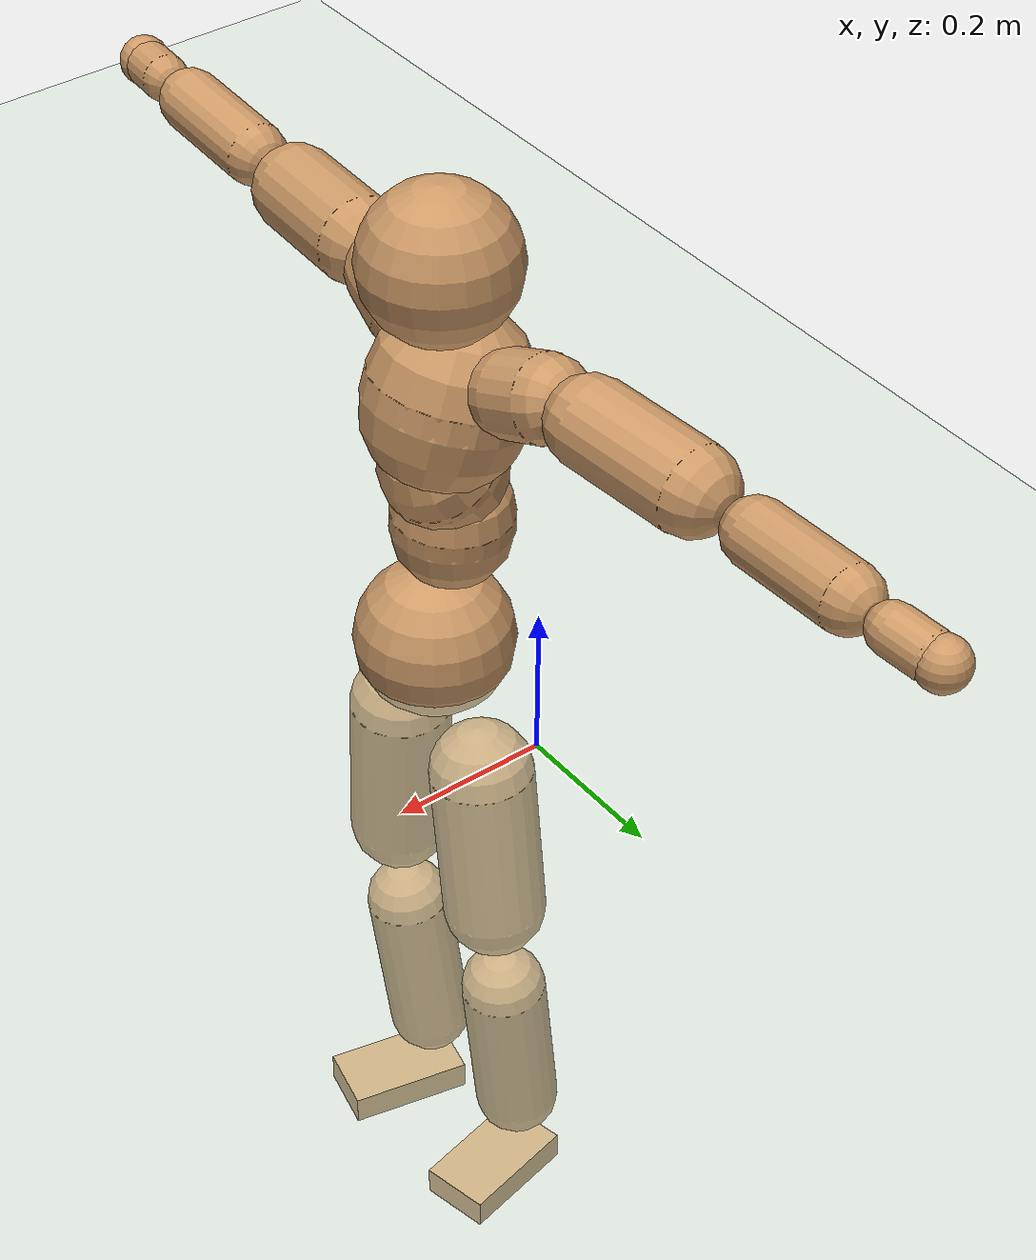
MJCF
<mujoco model="humanoid">
  <compiler coordinate="local"/>
  <default>
    <joint damping="0.0" armature="0.01" stiffness="0.0" limited="true"/>
    <geom conaffinity="1" condim="3" contype="7" margin="0.001" rgba="0.8 0.6 .4 1"/>
  </default>
  <asset>
    <texture type="skybox" builtin="gradient" rgb1=".4 .5 .6" rgb2="0 0 0" width="100" height="100"/>
    <texture builtin="flat" height="1278" mark="cross" markrgb="1 1 1" name="texgeom" random="0.01" rgb1="0.8 0.6 0.4" rgb2="0.8 0.6 0.4" type="cube" width="127"/>
    <texture builtin="checker" height="100" name="texplane" rgb1="0 0 0" rgb2="0.8 0.8 0.8" type="2d" width="100"/>
    <material name="MatPlane" reflectance="0.5" shininess="1" specular="1" texrepeat="60 60" texture="texplane"/>
    <material name="geom" texture="texgeom" texuniform="true"/>
  </asset>
  <worldbody>
    <light cutoff="100" diffuse="1 1 1" dir="-0 0 -1.3" directional="true" exponent="1" pos="0 0 1.3" specular=".1 .1 .1"/>
    <geom conaffinity="1" condim="3" name="floor" pos="0 0 0" rgba="0.8 0.9 0.8 1" size="100 100 .2" type="plane" material="MatPlane"/>
    <body name="Pelvis" pos="0.0009 -0.2072 0.0357">
      <freejoint name="Pelvis"/>
      <geom type="sphere" contype="1" conaffinity="1" density="500" size="0.1024" pos="0.0000 0.0000 0.0000" name="Pelvis"/>
      <body name="L_Hip" pos="-0.0049 0.0798 -0.0934">
        <joint name="L_Hip_x" type="hinge" pos="0 0 0" axis="1 0 0" stiffness="800" damping="80" armature="0.02" range="-180.0000 180.0000"/>
        <joint name="L_Hip_y" type="hinge" pos="0 0 0" axis="0 1 0" stiffness="800" damping="80" armature="0.02" range="-180.0000 180.0000"/>
        <joint name="L_Hip_z" type="hinge" pos="0 0 0" axis="0 0 1" stiffness="800" damping="80" armature="0.02" range="-180.0000 180.0000"/>
        <geom type="capsule" contype="1" conaffinity="1" density="500" fromto="-0.0026 0.0057 -0.0755 -0.0104 0.0229 -0.3022" size="0.0674" name="L_Hip"/>
        <body name="L_Knee" pos="-0.013 0.0286 -0.3777">
          <joint name="L_Knee_x" type="hinge" pos="0 0 0" axis="1 0 0" stiffness="800" damping="80" armature="0.02" range="-180.0000 180.0000"/>
          <joint name="L_Knee_y" type="hinge" pos="0 0 0" axis="0 1 0" stiffness="800" damping="80" armature="0.02" range="-180.0000 180.0000"/>
          <joint name="L_Knee_z" type="hinge" pos="0 0 0" axis="0 0 1" stiffness="800" damping="80" armature="0.02" range="-180.0000 180.0000"/>
          <geom type="capsule" contype="1" conaffinity="1" density="500" fromto="-0.0097 -0.0022 -0.0797 -0.0388 -0.0087 -0.3186" size="0.0562" name="L_Knee"/>
          <body name="L_Ankle" pos="-0.0485 -0.0109 -0.3983">
            <joint name="L_Ankle_x" type="hinge" pos="0 0 0" axis="1 0 0" stiffness="800" damping="80" armature="0.02" range="-180.0000 180.0000"/>
            <joint name="L_Ankle_y" type="hinge" pos="0 0 0" axis="0 1 0" stiffness="800" damping="80" armature="0.02" range="-180.0000 180.0000"/>
            <joint name="L_Ankle_z" type="hinge" pos="0 0 0" axis="0 0 1" stiffness="800" damping="80" armature="0.02" range="-180.0000 180.0000"/>
            <geom type="box" contype="1" conaffinity="1" density="500" pos="0.0575 0.0126 -0.0280" size="0.0827 0.0471 0.0209" quat="0.9942 0.0000 0.0000 0.1077" name="L_Ankle"/>
            <body name="L_Toe" pos="0.115 0.0252 -0.0561">
              <joint name="L_Toe_x" type="hinge" pos="0 0 0" axis="1 0 0" stiffness="500" damping="50" armature="0.02" range="-180.0000 180.0000"/>
              <joint name="L_Toe_y" type="hinge" pos="0 0 0" axis="0 1 0" stiffness="500" damping="50" armature="0.02" range="-180.0000 180.0000"/>
              <joint name="L_Toe_z" type="hinge" pos="0 0 0" axis="0 0 1" stiffness="500" damping="50" armature="0.02" range="-180.0000 180.0000"/>
              <geom type="box" contype="1" conaffinity="1" density="500" pos="0.0000 0.0000 0.0279" size="0.001 0.0024 0.001" quat="0.9935 0.0000 0.0000 0.1140" name="L_Toe"/>
            </body>
          </body>
        </body>
      </body>
      <body name="R_Hip" pos="-0.0016 -0.0776 -0.0934">
        <joint name="R_Hip_x" type="hinge" pos="0 0 0" axis="1 0 0" stiffness="800" damping="80" armature="0.02" range="-180.0000 180.0000"/>
        <joint name="R_Hip_y" type="hinge" pos="0 0 0" axis="0 1 0" stiffness="800" damping="80" armature="0.02" range="-180.0000 180.0000"/>
        <joint name="R_Hip_z" type="hinge" pos="0 0 0" axis="0 0 1" stiffness="800" damping="80" armature="0.02" range="-180.0000 180.0000"/>
        <geom type="capsule" contype="1" conaffinity="1" density="500" fromto="-0.0030 -0.0071 -0.0767 -0.0121 -0.0284 -0.3070" size="0.0666" name="R_Hip"/>
        <body name="R_Knee" pos="-0.0151 -0.0355 -0.3837">
          <joint name="R_Knee_x" type="hinge" pos="0 0 0" axis="1 0 0" stiffness="800" damping="80" armature="0.02" range="-180.0000 180.0000"/>
          <joint name="R_Knee_y" type="hinge" pos="0 0 0" axis="0 1 0" stiffness="800" damping="80" armature="0.02" range="-180.0000 180.0000"/>
          <joint name="R_Knee_z" type="hinge" pos="0 0 0" axis="0 0 1" stiffness="800" damping="80" armature="0.02" range="-180.0000 180.0000"/>
          <geom type="capsule" contype="1" conaffinity="1" density="500" fromto="-0.0093 0.0028 -0.0799 -0.0371 0.0111 -0.3196" size="0.0562" name="R_Knee"/>
          <body name="R_Ankle" pos="-0.0464 0.0138 -0.3995">
            <joint name="R_Ankle_x" type="hinge" pos="0 0 0" axis="1 0 0" stiffness="800" damping="80" armature="0.02" range="-180.0000 180.0000"/>
            <joint name="R_Ankle_y" type="hinge" pos="0 0 0" axis="0 1 0" stiffness="800" damping="80" armature="0.02" range="-180.0000 180.0000"/>
            <joint name="R_Ankle_z" type="hinge" pos="0 0 0" axis="0 0 1" stiffness="800" damping="80" armature="0.02" range="-180.0000 180.0000"/>
            <geom type="box" contype="1" conaffinity="1" density="500" pos="0.0595 -0.0129 -0.0246" size="0.0837 0.0466 0.0211" quat="0.9943 0.0000 0.0000 -0.1069" name="R_Ankle"/>
            <body name="R_Toe" pos="0.119 -0.0259 -0.0492">
              <joint name="R_Toe_x" type="hinge" pos="0 0 0" axis="1 0 0" stiffness="500" damping="50" armature="0.02" range="-180.0000 180.0000"/>
              <joint name="R_Toe_y" type="hinge" pos="0 0 0" axis="0 1 0" stiffness="500" damping="50" armature="0.02" range="-180.0000 180.0000"/>
              <joint name="R_Toe_z" type="hinge" pos="0 0 0" axis="0 0 1" stiffness="500" damping="50" armature="0.02" range="-180.0000 180.0000"/>
              <geom type="box" contype="1" conaffinity="1" density="500" pos="0.0000 0.0000 0.0256" size="0.0009 0.0023 0.0011" quat="0.9953 0.0000 0.0000 -0.0973" name="R_Toe"/>
            </body>
          </body>
        </body>
      </body>
      <body name="Torso" pos="-0.0277 -0.0021 0.107">
        <joint name="Torso_x" type="hinge" pos="0 0 0" axis="1 0 0" stiffness="1000" damping="100" armature="0.02" range="-180.0000 180.0000"/>
        <joint name="Torso_y" type="hinge" pos="0 0 0" axis="0 1 0" stiffness="1000" damping="100" armature="0.02" range="-180.0000 180.0000"/>
        <joint name="Torso_z" type="hinge" pos="0 0 0" axis="0 0 1" stiffness="1000" damping="100" armature="0.02" range="-180.0000 180.0000"/>
        <geom type="capsule" contype="1" conaffinity="1" density="500" fromto="-0.0018 0.0014 0.0724 -0.0012 0.0009 0.0483" size="0.0773" name="Torso"/>
        <body name="Spine" pos="-0.003 0.0023 0.1206">
          <joint name="Spine_x" type="hinge" pos="0 0 0" axis="1 0 0" stiffness="1000" damping="100" armature="0.02" range="-180.0000 180.0000"/>
          <joint name="Spine_y" type="hinge" pos="0 0 0" axis="0 1 0" stiffness="1000" damping="100" armature="0.02" range="-180.0000 180.0000"/>
          <joint name="Spine_z" type="hinge" pos="0 0 0" axis="0 0 1" stiffness="1000" damping="100" armature="0.02" range="-180.0000 180.0000"/>
          <geom type="capsule" contype="1" conaffinity="1" density="500" fromto="0.0189 0.0013 0.0288 0.0126 0.0008 0.0192" size="0.0779" name="Spine"/>
          <body name="Chest" pos="0.0315 0.0021 0.048">
            <joint name="Chest_x" type="hinge" pos="0 0 0" axis="1 0 0" stiffness="1000" damping="100" armature="0.02" range="-180.0000 180.0000"/>
            <joint name="Chest_y" type="hinge" pos="0 0 0" axis="0 1 0" stiffness="1000" damping="100" armature="0.02" range="-180.0000 180.0000"/>
            <joint name="Chest_z" type="hinge" pos="0 0 0" axis="0 0 1" stiffness="1000" damping="100" armature="0.02" range="-180.0000 180.0000"/>
            <geom type="capsule" contype="1" conaffinity="1" density="500" fromto="-0.0278 -0.0000 0.0908 -0.0185 -0.0000 0.0606" size="0.1035" name="Chest"/>
            <body name="Neck" pos="-0.058 0.0008 0.2107">
              <joint name="Neck_x" type="hinge" pos="0 0 0" axis="1 0 0" stiffness="500" damping="50" armature="0.02" range="-180.0000 180.0000"/>
              <joint name="Neck_y" type="hinge" pos="0 0 0" axis="0 1 0" stiffness="500" damping="50" armature="0.02" range="-180.0000 180.0000"/>
              <joint name="Neck_z" type="hinge" pos="0 0 0" axis="0 0 1" stiffness="500" damping="50" armature="0.02" range="-180.0000 180.0000"/>
              <geom type="capsule" contype="1" conaffinity="1" density="500" fromto="0.0093 0.0005 0.0109 0.0372 0.0019 0.0436" size="0.0421" name="Neck"/>
              <body name="Head" pos="0.0465 0.0023 0.0545">
                <joint name="Head_x" type="hinge" pos="0 0 0" axis="1 0 0" stiffness="500" damping="50" armature="0.02" range="-180.0000 180.0000"/>
                <joint name="Head_y" type="hinge" pos="0 0 0" axis="0 1 0" stiffness="500" damping="50" armature="0.02" range="-180.0000 180.0000"/>
                <joint name="Head_z" type="hinge" pos="0 0 0" axis="0 0 1" stiffness="500" damping="50" armature="0.02" range="-180.0000 180.0000"/>
                <geom type="sphere" contype="1" conaffinity="1" density="500" size="0.0989" pos="0.0000 0.0000 0.0000" name="Head"/>
              </body>
            </body>
            <body name="L_Thorax" pos="-0.0373 0.0848 0.1232">
              <joint name="L_Thorax_x" type="hinge" pos="0 0 0" axis="1 0 0" stiffness="500" damping="50" armature="0.02" range="-180.0000 180.0000"/>
              <joint name="L_Thorax_y" type="hinge" pos="0 0 0" axis="0 1 0" stiffness="500" damping="50" armature="0.02" range="-180.0000 180.0000"/>
              <joint name="L_Thorax_z" type="hinge" pos="0 0 0" axis="0 0 1" stiffness="500" damping="50" armature="0.02" range="-180.0000 180.0000"/>
              <geom type="capsule" contype="1" conaffinity="1" density="500" fromto="-0.0021 0.0182 0.0071 -0.0085 0.0727 0.0283" size="0.0539" name="L_Thorax"/>
              <body name="L_Shoulder" pos="-0.0106 0.0909 0.0353">
                <joint name="L_Shoulder_x" type="hinge" pos="0 0 0" axis="1 0 0" stiffness="500" damping="50" armature="0.02" range="-720.0000 720.0000"/>
                <joint name="L_Shoulder_y" type="hinge" pos="0 0 0" axis="0 1 0" stiffness="500" damping="50" armature="0.02" range="-720.0000 720.0000"/>
                <joint name="L_Shoulder_z" type="hinge" pos="0 0 0" axis="0 0 1" stiffness="500" damping="50" armature="0.02" range="-720.0000 720.0000"/>
                <geom type="capsule" contype="1" conaffinity="1" density="500" fromto="-0.0059 0.0514 -0.0022 -0.0234 0.2056 -0.0089" size="0.0556" name="L_Shoulder"/>
                <body name="L_Elbow" pos="-0.0293 0.2569 -0.0111">
                  <joint name="L_Elbow_x" type="hinge" pos="0 0 0" axis="1 0 0" stiffness="500" damping="50" armature="0.02" range="-720.0000 720.0000"/>
                  <joint name="L_Elbow_y" type="hinge" pos="0 0 0" axis="0 1 0" stiffness="500" damping="50" armature="0.02" range="-720.0000 720.0000"/>
                  <joint name="L_Elbow_z" type="hinge" pos="0 0 0" axis="0 0 1" stiffness="500" damping="50" armature="0.02" range="-720.0000 720.0000"/>
                  <geom type="capsule" contype="1" conaffinity="1" density="500" fromto="0.0002 0.0482 0.0021 0.0009 0.1928 0.0085" size="0.0412" name="L_Elbow"/>
                  <body name="L_Wrist" pos="0.0011 0.241 0.0106">
                    <joint name="L_Wrist_x" type="hinge" pos="0 0 0" axis="1 0 0" stiffness="300" damping="30" armature="0.02" range="-180.0000 180.0000"/>
                    <joint name="L_Wrist_y" type="hinge" pos="0 0 0" axis="0 1 0" stiffness="300" damping="30" armature="0.02" range="-180.0000 180.0000"/>
                    <joint name="L_Wrist_z" type="hinge" pos="0 0 0" axis="0 0 1" stiffness="300" damping="30" armature="0.02" range="-180.0000 180.0000"/>
                    <geom type="capsule" contype="1" conaffinity="1" density="500" fromto="-0.0026 0.0159 -0.0019 -0.0105 0.0637 -0.0077" size="0.0305" name="L_Wrist"/>
                    <body name="L_Hand" pos="-0.0131 0.0797 -0.0096">
                      <joint name="L_Hand_x" type="hinge" pos="0 0 0" axis="1 0 0" stiffness="300" damping="30" armature="0.02" range="-180.0000 180.0000"/>
                      <joint name="L_Hand_y" type="hinge" pos="0 0 0" axis="0 1 0" stiffness="300" damping="30" armature="0.02" range="-180.0000 180.0000"/>
                      <joint name="L_Hand_z" type="hinge" pos="0 0 0" axis="0 0 1" stiffness="300" damping="30" armature="0.02" range="-180.0000 180.0000"/>
                      <geom type="sphere" contype="1" conaffinity="1" density="500" size="0.0322" pos="0.0000 0.0000 0.0000" name="L_Hand"/>
                    </body>
                  </body>
                </body>
              </body>
            </body>
            <body name="R_Thorax" pos="-0.0435 -0.0858 0.1203">
              <joint name="R_Thorax_x" type="hinge" pos="0 0 0" axis="1 0 0" stiffness="500" damping="50" armature="0.02" range="-180.0000 180.0000"/>
              <joint name="R_Thorax_y" type="hinge" pos="0 0 0" axis="0 1 0" stiffness="500" damping="50" armature="0.02" range="-180.0000 180.0000"/>
              <joint name="R_Thorax_z" type="hinge" pos="0 0 0" axis="0 0 1" stiffness="500" damping="50" armature="0.02" range="-180.0000 180.0000"/>
              <geom type="capsule" contype="1" conaffinity="1" density="500" fromto="-0.0027 -0.0193 0.0075 -0.0109 -0.0770 0.0299" size="0.0532" name="R_Thorax"/>
              <body name="R_Shoulder" pos="-0.0136 -0.0963 0.0373">
                <joint name="R_Shoulder_x" type="hinge" pos="0 0 0" axis="1 0 0" stiffness="500" damping="50" armature="0.02" range="-720.0000 720.0000"/>
                <joint name="R_Shoulder_y" type="hinge" pos="0 0 0" axis="0 1 0" stiffness="500" damping="50" armature="0.02" range="-720.0000 720.0000"/>
                <joint name="R_Shoulder_z" type="hinge" pos="0 0 0" axis="0 0 1" stiffness="500" damping="50" armature="0.02" range="-720.0000 720.0000"/>
                <geom type="capsule" contype="1" conaffinity="1" density="500" fromto="-0.0045 -0.0511 -0.0030 -0.0180 -0.2045 -0.0120" size="0.0573" name="R_Shoulder"/>
                <body name="R_Elbow" pos="-0.0225 -0.2556 -0.015">
                  <joint name="R_Elbow_x" type="hinge" pos="0 0 0" axis="1 0 0" stiffness="500" damping="50" armature="0.02" range="-720.0000 720.0000"/>
                  <joint name="R_Elbow_y" type="hinge" pos="0 0 0" axis="0 1 0" stiffness="500" damping="50" armature="0.02" range="-720.0000 720.0000"/>
                  <joint name="R_Elbow_z" type="hinge" pos="0 0 0" axis="0 0 1" stiffness="500" damping="50" armature="0.02" range="-720.0000 720.0000"/>
                  <geom type="capsule" contype="1" conaffinity="1" density="500" fromto="-0.0003 -0.0503 0.0023 -0.0014 -0.2013 0.0091" size="0.0417" name="R_Elbow"/>
                  <body name="R_Wrist" pos="-0.0017 -0.2516 0.0113">
                    <joint name="R_Wrist_x" type="hinge" pos="0 0 0" axis="1 0 0" stiffness="300" damping="30" armature="0.02" range="-180.0000 180.0000"/>
                    <joint name="R_Wrist_y" type="hinge" pos="0 0 0" axis="0 1 0" stiffness="300" damping="30" armature="0.02" range="-180.0000 180.0000"/>
                    <joint name="R_Wrist_z" type="hinge" pos="0 0 0" axis="0 0 1" stiffness="300" damping="30" armature="0.02" range="-180.0000 180.0000"/>
                    <geom type="capsule" contype="1" conaffinity="1" density="500" fromto="-0.0022 -0.0164 -0.0015 -0.0086 -0.0654 -0.0059" size="0.0316" name="R_Wrist"/>
                    <body name="R_Hand" pos="-0.0108 -0.0818 -0.0074">
                      <joint name="R_Hand_x" type="hinge" pos="0 0 0" axis="1 0 0" stiffness="300" damping="30" armature="0.02" range="-180.0000 180.0000"/>
                      <joint name="R_Hand_y" type="hinge" pos="0 0 0" axis="0 1 0" stiffness="300" damping="30" armature="0.02" range="-180.0000 180.0000"/>
                      <joint name="R_Hand_z" type="hinge" pos="0 0 0" axis="0 0 1" stiffness="300" damping="30" armature="0.02" range="-180.0000 180.0000"/>
                      <geom type="sphere" contype="1" conaffinity="1" density="500" size="0.0330" pos="0.0000 0.0000 0.0000" name="R_Hand"/>
                    </body>
                  </body>
                </body>
              </body>
            </body>
          </body>
        </body>
      </body>
    </body>
  </worldbody>
  <actuator>
    <motor name="L_Hip_x" joint="L_Hip_x" gear="500"/>
    <motor name="L_Hip_y" joint="L_Hip_y" gear="500"/>
    <motor name="L_Hip_z" joint="L_Hip_z" gear="500"/>
    <motor name="L_Knee_x" joint="L_Knee_x" gear="500"/>
    <motor name="L_Knee_y" joint="L_Knee_y" gear="500"/>
    <motor name="L_Knee_z" joint="L_Knee_z" gear="500"/>
    <motor name="L_Ankle_x" joint="L_Ankle_x" gear="500"/>
    <motor name="L_Ankle_y" joint="L_Ankle_y" gear="500"/>
    <motor name="L_Ankle_z" joint="L_Ankle_z" gear="500"/>
    <motor name="L_Toe_x" joint="L_Toe_x" gear="500"/>
    <motor name="L_Toe_y" joint="L_Toe_y" gear="500"/>
    <motor name="L_Toe_z" joint="L_Toe_z" gear="500"/>
    <motor name="R_Hip_x" joint="R_Hip_x" gear="500"/>
    <motor name="R_Hip_y" joint="R_Hip_y" gear="500"/>
    <motor name="R_Hip_z" joint="R_Hip_z" gear="500"/>
    <motor name="R_Knee_x" joint="R_Knee_x" gear="500"/>
    <motor name="R_Knee_y" joint="R_Knee_y" gear="500"/>
    <motor name="R_Knee_z" joint="R_Knee_z" gear="500"/>
    <motor name="R_Ankle_x" joint="R_Ankle_x" gear="500"/>
    <motor name="R_Ankle_y" joint="R_Ankle_y" gear="500"/>
    <motor name="R_Ankle_z" joint="R_Ankle_z" gear="500"/>
    <motor name="R_Toe_x" joint="R_Toe_x" gear="500"/>
    <motor name="R_Toe_y" joint="R_Toe_y" gear="500"/>
    <motor name="R_Toe_z" joint="R_Toe_z" gear="500"/>
    <motor name="Torso_x" joint="Torso_x" gear="500"/>
    <motor name="Torso_y" joint="Torso_y" gear="500"/>
    <motor name="Torso_z" joint="Torso_z" gear="500"/>
    <motor name="Spine_x" joint="Spine_x" gear="500"/>
    <motor name="Spine_y" joint="Spine_y" gear="500"/>
    <motor name="Spine_z" joint="Spine_z" gear="500"/>
    <motor name="Chest_x" joint="Chest_x" gear="500"/>
    <motor name="Chest_y" joint="Chest_y" gear="500"/>
    <motor name="Chest_z" joint="Chest_z" gear="500"/>
    <motor name="Neck_x" joint="Neck_x" gear="500"/>
    <motor name="Neck_y" joint="Neck_y" gear="500"/>
    <motor name="Neck_z" joint="Neck_z" gear="500"/>
    <motor name="Head_x" joint="Head_x" gear="500"/>
    <motor name="Head_y" joint="Head_y" gear="500"/>
    <motor name="Head_z" joint="Head_z" gear="500"/>
    <motor name="L_Thorax_x" joint="L_Thorax_x" gear="500"/>
    <motor name="L_Thorax_y" joint="L_Thorax_y" gear="500"/>
    <motor name="L_Thorax_z" joint="L_Thorax_z" gear="500"/>
    <motor name="L_Shoulder_x" joint="L_Shoulder_x" gear="500"/>
    <motor name="L_Shoulder_y" joint="L_Shoulder_y" gear="500"/>
    <motor name="L_Shoulder_z" joint="L_Shoulder_z" gear="500"/>
    <motor name="L_Elbow_x" joint="L_Elbow_x" gear="500"/>
    <motor name="L_Elbow_y" joint="L_Elbow_y" gear="500"/>
    <motor name="L_Elbow_z" joint="L_Elbow_z" gear="500"/>
    <motor name="L_Wrist_x" joint="L_Wrist_x" gear="500"/>
    <motor name="L_Wrist_y" joint="L_Wrist_y" gear="500"/>
    <motor name="L_Wrist_z" joint="L_Wrist_z" gear="500"/>
    <motor name="L_Hand_x" joint="L_Hand_x" gear="500"/>
    <motor name="L_Hand_y" joint="L_Hand_y" gear="500"/>
    <motor name="L_Hand_z" joint="L_Hand_z" gear="500"/>
    <motor name="R_Thorax_x" joint="R_Thorax_x" gear="500"/>
    <motor name="R_Thorax_y" joint="R_Thorax_y" gear="500"/>
    <motor name="R_Thorax_z" joint="R_Thorax_z" gear="500"/>
    <motor name="R_Shoulder_x" joint="R_Shoulder_x" gear="500"/>
    <motor name="R_Shoulder_y" joint="R_Shoulder_y" gear="500"/>
    <motor name="R_Shoulder_z" joint="R_Shoulder_z" gear="500"/>
    <motor name="R_Elbow_x" joint="R_Elbow_x" gear="500"/>
    <motor name="R_Elbow_y" joint="R_Elbow_y" gear="500"/>
    <motor name="R_Elbow_z" joint="R_Elbow_z" gear="500"/>
    <motor name="R_Wrist_x" joint="R_Wrist_x" gear="500"/>
    <motor name="R_Wrist_y" joint="R_Wrist_y" gear="500"/>
    <motor name="R_Wrist_z" joint="R_Wrist_z" gear="500"/>
    <motor name="R_Hand_x" joint="R_Hand_x" gear="500"/>
    <motor name="R_Hand_y" joint="R_Hand_y" gear="500"/>
    <motor name="R_Hand_z" joint="R_Hand_z" gear="500"/>
  </actuator>
  <contact>
    <exclude body1="Torso" body2="Chest"/>
    <exclude body1="Head" body2="Chest"/>
    <exclude body1="R_Knee" body2="R_Toe"/>
    <exclude body1="R_Knee" body2="L_Ankle"/>
    <exclude body1="R_Knee" body2="L_Toe"/>
    <exclude body1="L_Knee" body2="L_Toe"/>
    <exclude body1="L_Knee" body2="R_Ankle"/>
    <exclude body1="L_Knee" body2="R_Toe"/>
    <exclude body1="L_Shoulder" body2="Chest"/>
    <exclude body1="R_Shoulder" body2="Chest"/>
  </contact>
  <sensor/>
  <size njmax="700" nconmax="700"/>
</mujoco>
